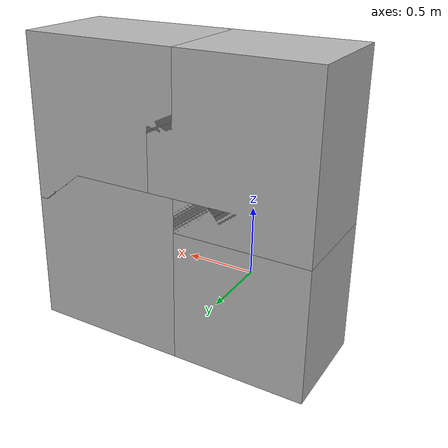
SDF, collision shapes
<?xml version="1.0" ?>
<sdf version='1.5'>
  <model name='obs_box'>

<!-- box1  -->

    <include>
      <name>b1</name>
      <uri>model://big_box3</uri>
      <pose>0.0 0 0.0 0 0 0</pose>
    </include>
    <include>
      <name>b2</name>
      <uri>model://big_box3</uri>
      <pose>0.0 0 1.0 0 0 0</pose>
    </include>
    <include>
      <name>b5</name>
      <uri>model://big_box3</uri>
      <pose>1.0 0 0.0 0 0 0</pose>
    </include>
    <include>
      <name>b6</name>
      <uri>model://big_box3</uri>
      <pose>1.0 0 1.0 0 0 0</pose>
    </include>

  </model>
</sdf>

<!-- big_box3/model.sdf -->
<sdf version="1.5">
  <model name="big_box3">
    <pose>0 0 0.625  0 0 0</pose>
    <static>false</static>
    <link name="link">
      <inertial>
        <mass>40.0</mass>
        <inertia>
          <ixx>1</ixx>
          <ixy>0</ixy>
          <ixz>0</ixz>
          <iyy>1</iyy>
          <iyz>0</iyz>
          <izz>1</izz>
        </inertia>
      </inertial>

      <collision name="collision">
        <geometry>
          <box>
              <size>1.20 0.80 1.25</size>
          </box>
        </geometry>
	<surface>
          <contact>
            <ode>
              <max_vel>0.1</max_vel>
              <min_depth>0.001</min_depth>
            </ode>
          </contact>
        </surface>
      </collision>
      <visual name="visual">
        <geometry>
          <mesh>
            <uri>model://../model_source/models/big_box3/meshes/big_box.dae</uri>
          </mesh>
	</geometry>
      </visual>
    </link>
  </model>
</sdf>
